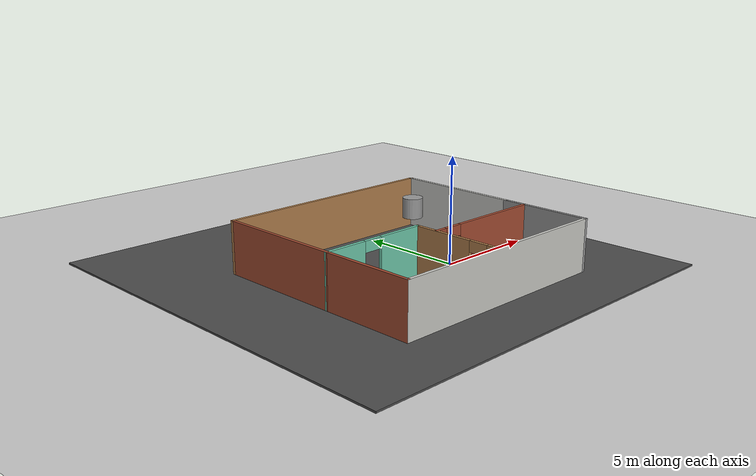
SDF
<sdf version="1.7">
 <world name="default">
  <light name="sun" type="directional">
   <pose>0 0 10 0 -0 0</pose>
   <diffuse>0.8 0.8 0.8 1</diffuse>
   <specular>0.2 0.2 0.2 1</specular>
   <attenuation>
    <range>1000</range>
    <constant>0.9</constant>
    <linear>0.01</linear>
    <quadratic>0.001</quadratic>
   </attenuation>
   <direction>-0.5 0.1 -0.9</direction>
   <spot><inner_angle>0</inner_angle><outer_angle>0</outer_angle><falloff>0</falloff></spot>
  </light>
  <model name="ground_plane">
   <static>1</static>
   <link name="link">
    <collision name="collision">
     <geometry><plane><normal>0 0 1</normal><size>100 100</size></plane></geometry>
     <surface>
      <contact><collide_bitmask>65535</collide_bitmask></contact>
      <friction><ode><mu>100</mu><mu2>50</mu2></ode></friction>
     </surface>
    </collision>
    <visual name="visual">
     <cast_shadows>0</cast_shadows>
     <geometry><plane><normal>0 0 1</normal><size>100 100</size></plane></geometry>
     <material>
      <script><uri>file://media/materials/scripts/gazebo.material</uri><name>Gazebo/Grey</name></script>
     </material>
    </visual>
   </link>
  </model>
  <gravity>0 0 -9.8</gravity>
  <magnetic_field>6e-06 2.3e-05 -4.2e-05</magnetic_field>
  <atmosphere type="adiabatic"/>
  <physics type="ode">
   <max_step_size>0.001</max_step_size>
   <real_time_factor>1</real_time_factor>
   <real_time_update_rate>1000</real_time_update_rate>
  </physics>
  <scene><ambient>0.4 0.4 0.4 1</ambient><background>0.7 0.7 0.7 1</background><shadows>1</shadows></scene>
  <spherical_coordinates>
   <surface_model>EARTH_WGS84</surface_model>
   <latitude_deg>0</latitude_deg>
   <longitude_deg>0</longitude_deg>
   <elevation>0</elevation>
   <heading_deg>0</heading_deg>
  </spherical_coordinates>
  <model name="myworld">
   <pose>-2.25998 0.400977 0 0 -0 0</pose>
   <link name="Wall_1">
    <collision name="Wall_1_Collision">
     <geometry><box><size>4.5 0.15 2.5</size></box></geometry>
     <pose>0 0 1.25 0 -0 0</pose>
    </collision>
    <visual name="Wall_1_Visual">
     <pose>0 0 1.25 0 -0 0</pose>
     <geometry><box><size>4.5 0.15 2.5</size></box></geometry>
     <material>
      <script><uri>file://media/materials/scripts/gazebo.material</uri><name>Gazebo/Grey</name></script>
      <ambient>1 1 1 1</ambient>
     </material>
     <meta><layer>0</layer></meta>
    </visual>
    <pose>5.55025 -3.04989 0 0 -0 -1.5708</pose>
   </link>
   <link name="Wall_10">
    <collision name="Wall_10_Collision">
     <geometry><box><size>6.25 0.15 2.5</size></box></geometry>
     <pose>0 0 1.25 0 -0 0</pose>
    </collision>
    <visual name="Wall_10_Visual">
     <pose>0 0 1.25 0 -0 0</pose>
     <geometry><box><size>6.25 0.15 2.5</size></box></geometry>
     <material>
      <script><uri>file://media/materials/scripts/gazebo.material</uri><name>Gazebo/CeilingTiled</name></script>
      <ambient>1 1 1 1</ambient>
     </material>
     <meta><layer>0</layer></meta>
    </visual>
    <pose>5.55025 2.1751 0 0 -0 1.5708</pose>
   </link>
   <link name="Wall_11">
    <collision name="Wall_11_Collision">
     <geometry><box><size>11.25 0.15 2.5</size></box></geometry>
     <pose>0 0 1.25 0 -0 0</pose>
    </collision>
    <visual name="Wall_11_Visual">
     <pose>0 0 1.25 0 -0 0</pose>
     <geometry><box><size>11.25 0.15 2.5</size></box></geometry>
     <material>
      <script><uri>file://media/materials/scripts/gazebo.material</uri><name>Gazebo/Wood</name></script>
      <ambient>1 1 1 1</ambient>
     </material>
     <meta><layer>0</layer></meta>
    </visual>
    <pose>0.000253 5.22511 0 0 -0 3.14159</pose>
   </link>
   <link name="Wall_15">
    <pose>-0.428144 -3.03316 0 0 -0 -1.5708</pose>
    <visual name="Wall_15_Visual_0">
     <pose>-0.749637 0 1.25 0 -0 0</pose>
     <geometry><box><size>3.00073 0.15 2.5</size></box></geometry>
     <material>
      <script><uri>file://media/materials/scripts/gazebo.material</uri><name>Gazebo/Wood</name></script>
      <ambient>1 1 1 1</ambient>
     </material>
     <meta><layer>0</layer></meta>
    </visual>
    <collision name="Wall_15_Collision_0">
     <geometry><box><size>3.00073 0.15 2.5</size></box></geometry>
     <pose>-0.749637 0 1.25 0 -0 0</pose>
    </collision>
    <visual name="Wall_15_Visual_1">
     <pose>1.95036 0 1.25 0 -0 0</pose>
     <geometry><box><size>0.599273 0.15 2.5</size></box></geometry>
     <material>
      <script><uri>file://media/materials/scripts/gazebo.material</uri><name>Gazebo/Wood</name></script>
      <ambient>1 1 1 1</ambient>
     </material>
     <meta><layer>0</layer></meta>
    </visual>
    <collision name="Wall_15_Collision_1">
     <geometry><box><size>0.599273 0.15 2.5</size></box></geometry>
     <pose>1.95036 0 1.25 0 -0 0</pose>
    </collision>
    <visual name="Wall_15_Visual_2">
     <pose>1.20073 0 2.25 0 -0 0</pose>
     <geometry><box><size>0.9 0.15 0.5</size></box></geometry>
     <material>
      <script><uri>file://media/materials/scripts/gazebo.material</uri><name>Gazebo/Wood</name></script>
      <ambient>1 1 1 1</ambient>
     </material>
     <meta><layer>0</layer></meta>
    </visual>
    <collision name="Wall_15_Collision_2">
     <geometry><box><size>0.9 0.15 0.5</size></box></geometry>
     <pose>1.20073 0 2.25 0 -0 0</pose>
    </collision>
   </link>
   <link name="Wall_17">
    <pose>2.52528 -1.95037 0 0 -0 0</pose>
    <visual name="Wall_17_Visual_0">
     <pose>-2.70036 0 1.25 0 -0 0</pose>
     <geometry><box><size>0.599278 0.15 2.5</size></box></geometry>
     <material>
      <script><uri>file://media/materials/scripts/gazebo.material</uri><name>Gazebo/Bricks</name></script>
      <ambient>1 1 1 1</ambient>
     </material>
     <meta><layer>0</layer></meta>
    </visual>
    <collision name="Wall_17_Collision_0">
     <geometry><box><size>0.599278 0.15 2.5</size></box></geometry>
     <pose>-2.70036 0 1.25 0 -0 0</pose>
    </collision>
    <visual name="Wall_17_Visual_1">
     <pose>0.749639 0 1.25 0 -0 0</pose>
     <geometry><box><size>4.50072 0.15 2.5</size></box></geometry>
     <material>
      <script><uri>file://media/materials/scripts/gazebo.material</uri><name>Gazebo/Bricks</name></script>
      <ambient>1 1 1 1</ambient>
     </material>
     <meta><layer>0</layer></meta>
    </visual>
    <collision name="Wall_17_Collision_1">
     <geometry><box><size>4.50072 0.15 2.5</size></box></geometry>
     <pose>0.749639 0 1.25 0 -0 0</pose>
    </collision>
    <visual name="Wall_17_Visual_2">
     <pose>-1.95072 0 2.25 0 -0 0</pose>
     <geometry><box><size>0.9 0.15 0.5</size></box></geometry>
     <material>
      <script><uri>file://media/materials/scripts/gazebo.material</uri><name>Gazebo/Bricks</name></script>
      <ambient>1 1 1 1</ambient>
     </material>
     <meta><layer>0</layer></meta>
    </visual>
    <collision name="Wall_17_Collision_2">
     <geometry><box><size>0.9 0.15 0.5</size></box></geometry>
     <pose>-1.95072 0 2.25 0 -0 0</pose>
    </collision>
   </link>
   <link name="Wall_19">
    <pose>-2.98908 -0.866631 0 0 -0 -3.13828</pose>
    <visual name="Wall_19_Visual_0">
     <pose>-1.49131 0 1.25 0 -0 0</pose>
     <geometry><box><size>2.28926 0.15 2.5</size></box></geometry>
     <material>
      <script><uri>file://media/materials/scripts/gazebo.material</uri><name>Gazebo/Grey</name></script>
      <ambient>0.435294 0.796078 0.67451 1</ambient>
     </material>
     <meta><layer>0</layer></meta>
    </visual>
    <collision name="Wall_19_Collision_0">
     <geometry><box><size>2.28926 0.15 2.5</size></box></geometry>
     <pose>-1.49131 0 1.25 0 -0 0</pose>
    </collision>
    <visual name="Wall_19_Visual_1">
     <pose>1.59463 0 1.25 0 -0 0</pose>
     <geometry><box><size>2.08263 0.15 2.5</size></box></geometry>
     <material>
      <script><uri>file://media/materials/scripts/gazebo.material</uri><name>Gazebo/Grey</name></script>
      <ambient>0.435294 0.796078 0.67451 1</ambient>
     </material>
     <meta><layer>0</layer></meta>
    </visual>
    <collision name="Wall_19_Collision_1">
     <geometry><box><size>2.08263 0.15 2.5</size></box></geometry>
     <pose>1.59463 0 1.25 0 -0 0</pose>
    </collision>
    <visual name="Wall_19_Visual_2">
     <pose>0.103317 0 2.25 0 -0 0</pose>
     <geometry><box><size>0.9 0.15 0.5</size></box></geometry>
     <material>
      <script><uri>file://media/materials/scripts/gazebo.material</uri><name>Gazebo/Grey</name></script>
      <ambient>0.435294 0.796078 0.67451 1</ambient>
     </material>
     <meta><layer>0</layer></meta>
    </visual>
    <collision name="Wall_19_Collision_2">
     <geometry><box><size>0.9 0.15 0.5</size></box></geometry>
     <pose>0.103317 0 2.25 0 -0 0</pose>
    </collision>
   </link>
   <link name="Wall_2">
    <collision name="Wall_2_Collision">
     <geometry><box><size>11.25 0.15 2.5</size></box></geometry>
     <pose>0 0 1.25 0 -0 0</pose>
    </collision>
    <visual name="Wall_2_Visual">
     <pose>0 0 1.25 0 -0 0</pose>
     <geometry><box><size>11.25 0.15 2.5</size></box></geometry>
     <material>
      <script><uri>file://media/materials/scripts/gazebo.material</uri><name>Gazebo/CeilingTiled</name></script>
      <ambient>0.203922 0.396078 0.643137 1</ambient>
     </material>
     <meta><layer>0</layer></meta>
    </visual>
    <pose>0.000124 -5.225 0 0 -0 -3.14157</pose>
   </link>
   <link name="Wall_5">
    <collision name="Wall_5_Collision">
     <geometry><box><size>4.5 0.15 2.5</size></box></geometry>
     <pose>0 0 1.25 0 -0 0</pose>
    </collision>
    <visual name="Wall_5_Visual">
     <pose>0 0 1.25 0 -0 0</pose>
     <geometry><box><size>4.5 0.15 2.5</size></box></geometry>
     <material>
      <script><uri>file://media/materials/scripts/gazebo.material</uri><name>Gazebo/Bricks</name></script>
      <ambient>0.996078 0.47451 0.0196078 1</ambient>
     </material>
     <meta><layer>0</layer></meta>
    </visual>
    <pose>-5.55001 -3.0501 0 0 -0 1.5708</pose>
   </link>
   <link name="Wall_8">
    <collision name="Wall_8_Collision">
     <geometry><box><size>6.25 0.15 2.5</size></box></geometry>
     <pose>0 0 1.25 0 -0 0</pose>
    </collision>
    <visual name="Wall_8_Visual">
     <pose>0 0 1.25 0 -0 0</pose>
     <geometry><box><size>6.25 0.15 2.5</size></box></geometry>
     <material>
      <script><uri>file://media/materials/scripts/gazebo.material</uri><name>Gazebo/Bricks</name></script>
      <ambient>1 1 1 1</ambient>
     </material>
     <meta><layer>0</layer></meta>
    </visual>
    <pose>-5.54988 2.175 0 0 -0 1.57075</pose>
   </link>
   <static>1</static>
  </model>
  <model name="unit_cylinder">
   <pose>2.04803 4.31876 1.45447 0 -0 0.000436</pose>
   <link name="link">
    <inertial>
     <mass>1</mass>
     <inertia><ixx>0.145833</ixx><ixy>0</ixy><ixz>0</ixz><iyy>0.145833</iyy><iyz>0</iyz><izz>0.125</izz></inertia>
    </inertial>
    <collision name="collision">
     <geometry><cylinder><radius>0.499999</radius><length>0.999998</length></cylinder></geometry>
    </collision>
    <visual name="visual">
     <geometry><cylinder><radius>0.499999</radius><length>0.999998</length></cylinder></geometry>
     <material>
      <script><name>Gazebo/Grey</name><uri>file://media/materials/scripts/gazebo.material</uri></script>
     </material>
    </visual>
   </link>
  </model>
  <model name="table">
   <static>1</static>
   <link name="link">
    <collision name="surface">
     <pose>0 0 1 0 -0 0</pose>
     <geometry><box><size>1.5 0.8 0.03</size></box></geometry>
     <surface><friction><ode><mu>0.6</mu><mu2>0.6</mu2></ode></friction></surface>
    </collision>
    <visual name="visual1">
     <pose>0 0 1 0 -0 0</pose>
     <geometry><box><size>1.5 0.8 0.03</size></box></geometry>
     <material>
      <script><uri>file://media/materials/scripts/gazebo.material</uri><name>Gazebo/Wood</name></script>
     </material>
    </visual>
    <collision name="front_left_leg">
     <pose>0.68 0.38 0.5 0 -0 0</pose>
     <geometry><cylinder><radius>0.02</radius><length>1</length></cylinder></geometry>
    </collision>
    <visual name="front_left_leg">
     <pose>0.68 0.38 0.5 0 -0 0</pose>
     <geometry><cylinder><radius>0.02</radius><length>1</length></cylinder></geometry>
     <material>
      <script><uri>file://media/materials/scripts/gazebo.material</uri><name>Gazebo/Grey</name></script>
     </material>
    </visual>
    <collision name="front_right_leg">
     <pose>0.68 -0.38 0.5 0 -0 0</pose>
     <geometry><cylinder><radius>0.02</radius><length>1</length></cylinder></geometry>
    </collision>
    <visual name="front_right_leg">
     <pose>0.68 -0.38 0.5 0 -0 0</pose>
     <geometry><cylinder><radius>0.02</radius><length>1</length></cylinder></geometry>
     <material>
      <script><uri>file://media/materials/scripts/gazebo.material</uri><name>Gazebo/Grey</name></script>
     </material>
    </visual>
    <collision name="back_right_leg">
     <pose>-0.68 -0.38 0.5 0 -0 0</pose>
     <geometry><cylinder><radius>0.02</radius><length>1</length></cylinder></geometry>
    </collision>
    <visual name="back_right_leg">
     <pose>-0.68 -0.38 0.5 0 -0 0</pose>
     <geometry><cylinder><radius>0.02</radius><length>1</length></cylinder></geometry>
     <material>
      <script><uri>file://media/materials/scripts/gazebo.material</uri><name>Gazebo/Grey</name></script>
     </material>
    </visual>
    <collision name="back_left_leg">
     <pose>-0.68 0.38 0.5 0 -0 0</pose>
     <geometry><cylinder><radius>0.02</radius><length>1</length></cylinder></geometry>
    </collision>
    <visual name="back_left_leg">
     <pose>-0.68 0.38 0.5 0 -0 0</pose>
     <geometry><cylinder><radius>0.02</radius><length>1</length></cylinder></geometry>
     <material>
      <script><uri>file://media/materials/scripts/gazebo.material</uri><name>Gazebo/Grey</name></script>
     </material>
    </visual>
   </link>
   <pose>-5.96155 2.37102 0 0 -0 1.58734</pose>
  </model>
  <model name="bookshelf">
   <static>1</static>
   <link name="link">
    <inertial><mass>1</mass></inertial>
    <collision name="back">
     <pose>0 0.005 0.6 0 -0 0</pose>
     <geometry><box><size>0.9 0.01 1.2</size></box></geometry>
    </collision>
    <visual name="visual1">
     <pose>0 0.005 0.6 0 -0 0</pose>
     <geometry><box><size>0.9 0.01 1.2</size></box></geometry>
     <material>
      <script><uri>file://media/materials/scripts/gazebo.material</uri><name>Gazebo/Wood</name></script>
     </material>
    </visual>
    <collision name="left_side">
     <pose>0.45 -0.195 0.6 0 -0 0</pose>
     <geometry><box><size>0.02 0.4 1.2</size></box></geometry>
    </collision>
    <visual name="visual2">
     <pose>0.45 -0.195 0.6 0 -0 0</pose>
     <geometry><box><size>0.02 0.4 1.2</size></box></geometry>
     <material>
      <script><uri>file://media/materials/scripts/gazebo.material</uri><name>Gazebo/Wood</name></script>
     </material>
    </visual>
    <collision name="right_side">
     <pose>-0.45 -0.195 0.6 0 -0 0</pose>
     <geometry><box><size>0.02 0.4 1.2</size></box></geometry>
    </collision>
    <visual name="visual3">
     <pose>-0.45 -0.195 0.6 0 -0 0</pose>
     <geometry><box><size>0.02 0.4 1.2</size></box></geometry>
     <material>
      <script><uri>file://media/materials/scripts/gazebo.material</uri><name>Gazebo/Wood</name></script>
     </material>
    </visual>
    <collision name="bottom">
     <pose>0 -0.195 0.03 0 -0 0</pose>
     <geometry><box><size>0.88 0.4 0.06</size></box></geometry>
    </collision>
    <visual name="visual4">
     <pose>0 -0.195 0.03 0 -0 0</pose>
     <geometry><box><size>0.88 0.4 0.06</size></box></geometry>
     <material>
      <script><uri>file://media/materials/scripts/gazebo.material</uri><name>Gazebo/Wood</name></script>
     </material>
    </visual>
    <collision name="top">
     <pose>0 -0.195 1.19 0 -0 0</pose>
     <geometry><box><size>0.88 0.4 0.02</size></box></geometry>
    </collision>
    <visual name="visual5">
     <pose>0 -0.195 1.19 0 -0 0</pose>
     <geometry><box><size>0.88 0.4 0.02</size></box></geometry>
     <material>
      <script><uri>file://media/materials/scripts/gazebo.material</uri><name>Gazebo/Wood</name></script>
     </material>
    </visual>
    <collision name="low_shelf">
     <pose>0 -0.195 0.43 0 -0 0</pose>
     <geometry><box><size>0.88 0.4 0.02</size></box></geometry>
    </collision>
    <visual name="visual6">
     <pose>0 -0.195 0.43 0 -0 0</pose>
     <geometry><box><size>0.88 0.4 0.02</size></box></geometry>
     <material>
      <script><uri>file://media/materials/scripts/gazebo.material</uri><name>Gazebo/Wood</name></script>
     </material>
    </visual>
    <collision name="high_shelf">
     <pose>0 -0.195 0.8 0 -0 0</pose>
     <geometry><box><size>0.88 0.4 0.02</size></box></geometry>
    </collision>
    <visual name="visual7">
     <pose>0 -0.195 0.8 0 -0 0</pose>
     <geometry><box><size>0.88 0.4 0.02</size></box></geometry>
     <material>
      <script><uri>file://media/materials/scripts/gazebo.material</uri><name>Gazebo/Wood</name></script>
     </material>
    </visual>
   </link>
   <pose>3.04217 0.457529 -0 0 0 -1.62905</pose>
  </model>
  <model name="asphalt_plane">
   <static>1</static>
   <link name="link">
    <collision name="collision"><geometry><box><size>20 20 0.1</size></box></geometry></collision>
    <visual name="visual">
     <cast_shadows>0</cast_shadows>
     <geometry><box><size>20 20 0.1</size></box></geometry>
     <material>
      <script>
       <uri>model://asphalt_plane/materials/scripts</uri>
       <uri>model://asphalt_plane/materials/textures</uri>
       <name>vrc/asphalt</name>
      </script>
     </material>
    </visual>
   </link>
   <pose>-2.31223 2.20363 0 0 -0 0</pose>
  </model>
 </world>
</sdf>
